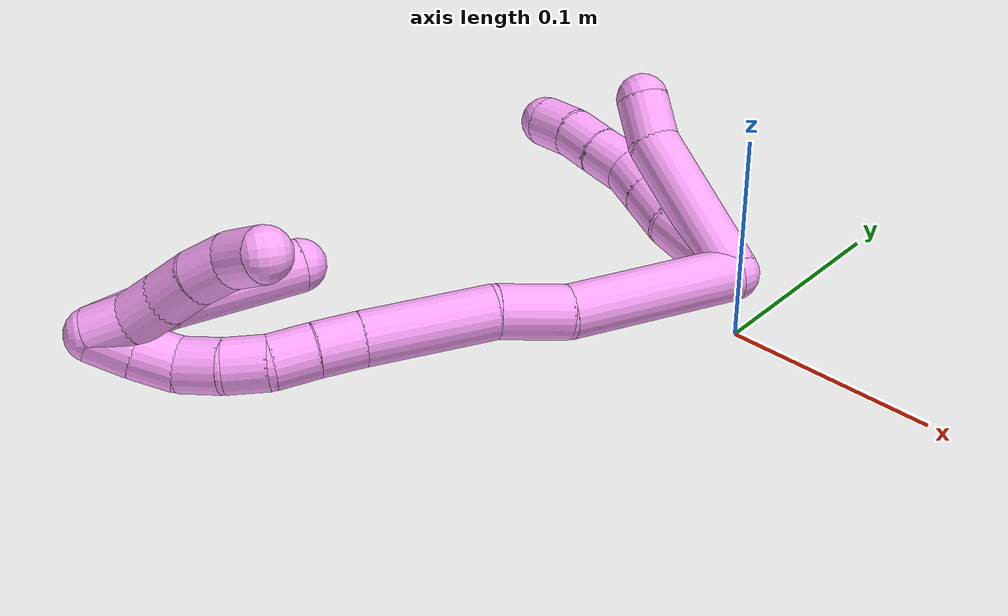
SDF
<sdf version="1.7">
 <world name="default">
  <model name="photoneo_s_sensor">
   <static>1</static>
   <pose>0 0 2 1.57079 1.57079 3.14159</pose>
   <link name="link">
    <inertial><mass>0.1</mass></inertial>
    <sensor name="sensor" type="depth">
     <update_rate>30</update_rate>
     <camera>
      <horizontal_fov>1.22</horizontal_fov>
      <image><width>1920</width><height>1200</height><format>B8G8R8</format></image>
      <clip><near>0.1</near><far>4</far></clip>
      <depth_camera><output>points</output></depth_camera>
     </camera>
     <plugin name="camera_plugin" filename="libgazebo_ros_depth_camera.so">
      <baseline>0.2</baseline>
      <alwaysOn>1</alwaysOn>
      <updateRate>0.0</updateRate>
      <cameraName>camera_ir</cameraName>
      <imageTopicName>/camera/color/image_raw</imageTopicName>
      <cameraInfoTopicName>/camera/color/camera_info</cameraInfoTopicName>
      <depthImageTopicName>/camera/depth/image_raw</depthImageTopicName>
      <depthImageCameraInfoTopicName>/camera/depth/camera_info</depthImageCameraInfoTopicName>
      <pointCloudTopicName>/camera/depth/points</pointCloudTopicName>
      <frameName>fr_optical</frameName>
      <pointCloudCutoff>0.1</pointCloudCutoff>
      <pointCloudCutoffMax>2.0</pointCloudCutoffMax>
      <distortionK1>0</distortionK1>
      <distortionK2>0</distortionK2>
      <distortionK3>0</distortionK3>
      <distortionT1>0</distortionT1>
      <distortionT2>0</distortionT2>
      <CxPrime>0</CxPrime>
      <Cx>0</Cx>
      <Cy>0</Cy>
      <focalLength>0</focalLength>
      <hackBaseline>0</hackBaseline>
     </plugin>
    </sensor>
   </link>
  </model>
  <model name="bin">
   <static>1</static>
   <link name="bottom">
    <collision name="collision-bottom">
     <pose>0 0 -0.01 0 -0 0</pose>
     <geometry><box><size>0.8 0.6 0.02</size></box></geometry>
     <surface>
      <friction><ode><mu>100</mu><mu2>100</mu2></ode></friction>
      <contact><collide_bitmask>65535</collide_bitmask></contact>
     </surface>
    </collision>
   </link>
   <link name="west_wall">
    <collision name="collision-west_wall">
     <pose>-0.41 0 0.1 0 -0 0</pose>
     <geometry><box><size>0.02 0.6 0.2</size></box></geometry>
     <surface>
      <friction><ode><mu>100</mu><mu2>100</mu2></ode></friction>
      <contact><collide_bitmask>65535</collide_bitmask></contact>
     </surface>
    </collision>
   </link>
   <link name="east_wall">
    <collision name="collision-east_wall">
     <pose>0.41 0 0.1 0 -0 0</pose>
     <geometry><box><size>0.02 0.6 0.2</size></box></geometry>
     <surface>
      <friction><ode><mu>100</mu><mu2>100</mu2></ode></friction>
      <contact><collide_bitmask>65535</collide_bitmask></contact>
     </surface>
    </collision>
   </link>
   <link name="south_wall">
    <collision name="collision-south_wall">
     <pose>0 -0.31 0.1 0 -0 0</pose>
     <geometry><box><size>0.8 0.02 0.2</size></box></geometry>
     <surface>
      <friction><ode><mu>100</mu><mu2>100</mu2></ode></friction>
      <contact><collide_bitmask>65535</collide_bitmask></contact>
     </surface>
    </collision>
   </link>
   <link name="north_wall">
    <collision name="collision-north_wall">
     <pose>0 0.31 0.1 0 -0 0</pose>
     <geometry><box><size>0.8 0.02 0.2</size></box></geometry>
     <surface>
      <friction><ode><mu>100</mu><mu2>100</mu2></ode></friction>
      <contact><collide_bitmask>65535</collide_bitmask></contact>
     </surface>
    </collision>
   </link>
  </model>
  <model name="4">
   <static>0</static>
   <link name="4">
    <collision name="collision-cylinder-e_1_2_8">
     <pose>-0.021195 -0.001602 0.007622 0.207157 -1.21866 -0.144845</pose>
     <geometry><cylinder><radius>0.0125</radius><length>0.045162</length></cylinder></geometry>
     <surface>
      <friction><ode><mu>1.16</mu><mu2>1.16</mu2><slip1>0</slip1><slip2>0</slip2></ode></friction>
      <contact><ode><kp>1e+06</kp><kd>1</kd><max_vel>0</max_vel><min_depth>0.001</min_depth></ode></contact>
     </surface>
    </collision>
    <visual name="visual-cylinder-e_1_2_8">
     <pose>-0.021195 -0.001602 0.007622 0.207157 -1.21866 -0.144845</pose>
     <geometry><cylinder><radius>0.0125</radius><length>0.045162</length></cylinder></geometry>
     <material><ambient>1 0.65098 0.996078 1</ambient></material>
    </visual>
    <collision name="collision-cylinder-e_2_8_9">
     <pose>-0.053796 -0.003741 0.017195 0.268714 -1.39514 -0.225623</pose>
     <geometry><cylinder><radius>0.0125</radius><length>0.023169</length></cylinder></geometry>
     <surface>
      <friction><ode><mu>1.16</mu><mu2>1.16</mu2><slip1>0</slip1><slip2>0</slip2></ode></friction>
      <contact><ode><kp>1e+06</kp><kd>1</kd><max_vel>0</max_vel><min_depth>0.001</min_depth></ode></contact>
     </surface>
    </collision>
    <visual name="visual-cylinder-e_2_8_9">
     <pose>-0.053796 -0.003741 0.017195 0.268714 -1.39514 -0.225623</pose>
     <geometry><cylinder><radius>0.0125</radius><length>0.023169</length></cylinder></geometry>
     <material><ambient>1 0.65098 0.996078 1</ambient></material>
    </visual>
    <collision name="collision-cylinder-e_3_9_10">
     <pose>-0.075346 -0.00472 0.020949 0.240357 -1.38985 -0.200668</pose>
     <geometry><cylinder><radius>0.0125</radius><length>0.020624</length></cylinder></geometry>
     <surface>
      <friction><ode><mu>1.16</mu><mu2>1.16</mu2><slip1>0</slip1><slip2>0</slip2></ode></friction>
      <contact><ode><kp>1e+06</kp><kd>1</kd><max_vel>0</max_vel><min_depth>0.001</min_depth></ode></contact>
     </surface>
    </collision>
    <visual name="visual-cylinder-e_3_9_10">
     <pose>-0.075346 -0.00472 0.020949 0.240357 -1.38985 -0.200668</pose>
     <geometry><cylinder><radius>0.0125</radius><length>0.020624</length></cylinder></geometry>
     <material><ambient>1 0.65098 0.996078 1</ambient></material>
    </visual>
    <collision name="collision-cylinder-e_4_10_11">
     <pose>-0.094609 -0.005785 0.027319 0.135614 -1.10277 -0.083484</pose>
     <geometry><cylinder><radius>0.0125</radius><length>0.020435</length></cylinder></geometry>
     <surface>
      <friction><ode><mu>1.16</mu><mu2>1.16</mu2><slip1>0</slip1><slip2>0</slip2></ode></friction>
      <contact><ode><kp>1e+06</kp><kd>1</kd><max_vel>0</max_vel><min_depth>0.001</min_depth></ode></contact>
     </surface>
    </collision>
    <visual name="visual-cylinder-e_4_10_11">
     <pose>-0.094609 -0.005785 0.027319 0.135614 -1.10277 -0.083484</pose>
     <geometry><cylinder><radius>0.0125</radius><length>0.020435</length></cylinder></geometry>
     <material><ambient>1 0.65098 0.996078 1</ambient></material>
    </visual>
    <collision name="collision-cylinder-e_5_11_12">
     <pose>-0.113071 -0.007404 0.035898 0.243206 -1.15426 -0.158795</pose>
     <geometry><cylinder><radius>0.0125</radius><length>0.020434</length></cylinder></geometry>
     <surface>
      <friction><ode><mu>1.16</mu><mu2>1.16</mu2><slip1>0</slip1><slip2>0</slip2></ode></friction>
      <contact><ode><kp>1e+06</kp><kd>1</kd><max_vel>0</max_vel><min_depth>0.001</min_depth></ode></contact>
     </surface>
    </collision>
    <visual name="visual-cylinder-e_5_11_12">
     <pose>-0.113071 -0.007404 0.035898 0.243206 -1.15426 -0.158795</pose>
     <geometry><cylinder><radius>0.0125</radius><length>0.020434</length></cylinder></geometry>
     <material><ambient>1 0.65098 0.996078 1</ambient></material>
    </visual>
    <collision name="collision-cylinder-e_6_12_6">
     <pose>-0.131022 -0.010765 0.044609 0.46636 -1.02227 -0.264845</pose>
     <geometry><cylinder><radius>0.0125</radius><length>0.020177</length></cylinder></geometry>
     <surface>
      <friction><ode><mu>1.16</mu><mu2>1.16</mu2><slip1>0</slip1><slip2>0</slip2></ode></friction>
      <contact><ode><kp>1e+06</kp><kd>1</kd><max_vel>0</max_vel><min_depth>0.001</min_depth></ode></contact>
     </surface>
    </collision>
    <visual name="visual-cylinder-e_6_12_6">
     <pose>-0.131022 -0.010765 0.044609 0.46636 -1.02227 -0.264845</pose>
     <geometry><cylinder><radius>0.0125</radius><length>0.020177</length></cylinder></geometry>
     <material><ambient>1 0.65098 0.996078 1</ambient></material>
    </visual>
    <collision name="collision-cylinder-e_1_2_13">
     <pose>-0.035571 0.011431 0.009116 -0.897583 -1.18081 0.624332</pose>
     <geometry><cylinder><radius>0.0125</radius><length>0.076918</length></cylinder></geometry>
     <surface>
      <friction><ode><mu>1.16</mu><mu2>1.16</mu2><slip1>0</slip1><slip2>0</slip2></ode></friction>
      <contact><ode><kp>1e+06</kp><kd>1</kd><max_vel>0</max_vel><min_depth>0.001</min_depth></ode></contact>
     </surface>
    </collision>
    <visual name="visual-cylinder-e_1_2_13">
     <pose>-0.035571 0.011431 0.009116 -0.897583 -1.18081 0.624332</pose>
     <geometry><cylinder><radius>0.0125</radius><length>0.076918</length></cylinder></geometry>
     <material><ambient>1 0.65098 0.996078 1</ambient></material>
    </visual>
    <collision name="collision-cylinder-e_2_13_5">
     <pose>-0.081109 0.028669 0.018623 -1.50373 -1.04227 0.985308</pose>
     <geometry><cylinder><radius>0.0125</radius><length>0.023082</length></cylinder></geometry>
     <surface>
      <friction><ode><mu>1.16</mu><mu2>1.16</mu2><slip1>0</slip1><slip2>0</slip2></ode></friction>
      <contact><ode><kp>1e+06</kp><kd>1</kd><max_vel>0</max_vel><min_depth>0.001</min_depth></ode></contact>
     </surface>
    </collision>
    <visual name="visual-cylinder-e_2_13_5">
     <pose>-0.081109 0.028669 0.018623 -1.50373 -1.04227 0.985308</pose>
     <geometry><cylinder><radius>0.0125</radius><length>0.023082</length></cylinder></geometry>
     <material><ambient>1 0.65098 0.996078 1</ambient></material>
    </visual>
    <collision name="collision-cylinder-e_1_2_14">
     <pose>0.006183 0.000753 0.041588 -0.018101 0.147566 -0.001338</pose>
     <geometry><cylinder><radius>0.0125</radius><length>0.084103</length></cylinder></geometry>
     <surface>
      <friction><ode><mu>1.16</mu><mu2>1.16</mu2><slip1>0</slip1><slip2>0</slip2></ode></friction>
      <contact><ode><kp>1e+06</kp><kd>1</kd><max_vel>0</max_vel><min_depth>0.001</min_depth></ode></contact>
     </surface>
    </collision>
    <visual name="visual-cylinder-e_1_2_14">
     <pose>0.006183 0.000753 0.041588 -0.018101 0.147566 -0.001338</pose>
     <geometry><cylinder><radius>0.0125</radius><length>0.084103</length></cylinder></geometry>
     <material><ambient>1 0.65098 0.996078 1</ambient></material>
    </visual>
    <collision name="collision-cylinder-e_2_14_15">
     <pose>0.011658 0.003982 0.100081 -0.145457 -0.041376 0.003015</pose>
     <geometry><cylinder><radius>0.0125</radius><length>0.034201</length></cylinder></geometry>
     <surface>
      <friction><ode><mu>1.16</mu><mu2>1.16</mu2><slip1>0</slip1><slip2>0</slip2></ode></friction>
      <contact><ode><kp>1e+06</kp><kd>1</kd><max_vel>0</max_vel><min_depth>0.001</min_depth></ode></contact>
     </surface>
    </collision>
    <visual name="visual-cylinder-e_2_14_15">
     <pose>0.011658 0.003982 0.100081 -0.145457 -0.041376 0.003015</pose>
     <geometry><cylinder><radius>0.0125</radius><length>0.034201</length></cylinder></geometry>
     <material><ambient>1 0.65098 0.996078 1</ambient></material>
    </visual>
    <collision name="collision-cylinder-e_3_15_16">
     <pose>0.01232 0.004735 0.147248 0.056909 0.04512 0.001284</pose>
     <geometry><cylinder><radius>0.0125</radius><length>0.060683</length></cylinder></geometry>
     <surface>
      <friction><ode><mu>1.16</mu><mu2>1.16</mu2><slip1>0</slip1><slip2>0</slip2></ode></friction>
      <contact><ode><kp>1e+06</kp><kd>1</kd><max_vel>0</max_vel><min_depth>0.001</min_depth></ode></contact>
     </surface>
    </collision>
    <visual name="visual-cylinder-e_3_15_16">
     <pose>0.01232 0.004735 0.147248 0.056909 0.04512 0.001284</pose>
     <geometry><cylinder><radius>0.0125</radius><length>0.060683</length></cylinder></geometry>
     <material><ambient>1 0.65098 0.996078 1</ambient></material>
    </visual>
    <collision name="collision-cylinder-e_4_16_17">
     <pose>0.014651 0.002455 0.187892 0.053473 0.092324 0.002471</pose>
     <geometry><cylinder><radius>0.0125</radius><length>0.020884</length></cylinder></geometry>
     <surface>
      <friction><ode><mu>1.16</mu><mu2>1.16</mu2><slip1>0</slip1><slip2>0</slip2></ode></friction>
      <contact><ode><kp>1e+06</kp><kd>1</kd><max_vel>0</max_vel><min_depth>0.001</min_depth></ode></contact>
     </surface>
    </collision>
    <visual name="visual-cylinder-e_4_16_17">
     <pose>0.014651 0.002455 0.187892 0.053473 0.092324 0.002471</pose>
     <geometry><cylinder><radius>0.0125</radius><length>0.020884</length></cylinder></geometry>
     <material><ambient>1 0.65098 0.996078 1</ambient></material>
    </visual>
    <collision name="collision-cylinder-e_5_17_18">
     <pose>0.016495 0.000818 0.208207 0.108403 0.087965 0.004776</pose>
     <geometry><cylinder><radius>0.0125</radius><length>0.020061</length></cylinder></geometry>
     <surface>
      <friction><ode><mu>1.16</mu><mu2>1.16</mu2><slip1>0</slip1><slip2>0</slip2></ode></friction>
      <contact><ode><kp>1e+06</kp><kd>1</kd><max_vel>0</max_vel><min_depth>0.001</min_depth></ode></contact>
     </surface>
    </collision>
    <visual name="visual-cylinder-e_5_17_18">
     <pose>0.016495 0.000818 0.208207 0.108403 0.087965 0.004776</pose>
     <geometry><cylinder><radius>0.0125</radius><length>0.020061</length></cylinder></geometry>
     <material><ambient>1 0.65098 0.996078 1</ambient></material>
    </visual>
    <collision name="collision-cylinder-e_6_18_19">
     <pose>0.015307 -0.001605 0.227857 0.137292 -0.207901 -0.014345</pose>
     <geometry><cylinder><radius>0.0125</radius><length>0.02005</length></cylinder></geometry>
     <surface>
      <friction><ode><mu>1.16</mu><mu2>1.16</mu2><slip1>0</slip1><slip2>0</slip2></ode></friction>
      <contact><ode><kp>1e+06</kp><kd>1</kd><max_vel>0</max_vel><min_depth>0.001</min_depth></ode></contact>
     </surface>
    </collision>
    <visual name="visual-cylinder-e_6_18_19">
     <pose>0.015307 -0.001605 0.227857 0.137292 -0.207901 -0.014345</pose>
     <geometry><cylinder><radius>0.0125</radius><length>0.02005</length></cylinder></geometry>
     <material><ambient>1 0.65098 0.996078 1</ambient></material>
    </visual>
    <collision name="collision-cylinder-e_7_19_20">
     <pose>0.009111 -0.004903 0.246478 0.216148 -0.425008 -0.04681</pose>
     <geometry><cylinder><radius>0.0125</radius><length>0.020014</length></cylinder></geometry>
     <surface>
      <friction><ode><mu>1.16</mu><mu2>1.16</mu2><slip1>0</slip1><slip2>0</slip2></ode></friction>
      <contact><ode><kp>1e+06</kp><kd>1</kd><max_vel>0</max_vel><min_depth>0.001</min_depth></ode></contact>
     </surface>
    </collision>
    <visual name="visual-cylinder-e_7_19_20">
     <pose>0.009111 -0.004903 0.246478 0.216148 -0.425008 -0.04681</pose>
     <geometry><cylinder><radius>0.0125</radius><length>0.020014</length></cylinder></geometry>
     <material><ambient>1 0.65098 0.996078 1</ambient></material>
    </visual>
    <collision name="collision-cylinder-e_8_20_21">
     <pose>0.00054 -0.005403 0.264221 -0.163144 -0.460699 0.03834</pose>
     <geometry><cylinder><radius>0.0125</radius><length>0.02</length></cylinder></geometry>
     <surface>
      <friction><ode><mu>1.16</mu><mu2>1.16</mu2><slip1>0</slip1><slip2>0</slip2></ode></friction>
      <contact><ode><kp>1e+06</kp><kd>1</kd><max_vel>0</max_vel><min_depth>0.001</min_depth></ode></contact>
     </surface>
    </collision>
    <visual name="visual-cylinder-e_8_20_21">
     <pose>0.00054 -0.005403 0.264221 -0.163144 -0.460699 0.03834</pose>
     <geometry><cylinder><radius>0.0125</radius><length>0.02</length></cylinder></geometry>
     <material><ambient>1 0.65098 0.996078 1</ambient></material>
    </visual>
    <collision name="collision-cylinder-e_9_21_1">
     <pose>-0.007977 -0.001174 0.281765 -0.308475 -0.419141 0.066112</pose>
     <geometry><cylinder><radius>0.0125</radius><length>0.020005</length></cylinder></geometry>
     <surface>
      <friction><ode><mu>1.16</mu><mu2>1.16</mu2><slip1>0</slip1><slip2>0</slip2></ode></friction>
      <contact><ode><kp>1e+06</kp><kd>1</kd><max_vel>0</max_vel><min_depth>0.001</min_depth></ode></contact>
     </surface>
    </collision>
    <visual name="visual-cylinder-e_9_21_1">
     <pose>-0.007977 -0.001174 0.281765 -0.308475 -0.419141 0.066112</pose>
     <geometry><cylinder><radius>0.0125</radius><length>0.020005</length></cylinder></geometry>
     <material><ambient>1 0.65098 0.996078 1</ambient></material>
    </visual>
    <collision name="collision-cylinder-e_1_1_22">
     <pose>-0.010415 0.005998 0.281639 -2.67947 0.164036 -0.672297</pose>
     <geometry><cylinder><radius>0.0125</radius><length>0.02</length></cylinder></geometry>
     <surface>
      <friction><ode><mu>1.16</mu><mu2>1.16</mu2><slip1>0</slip1><slip2>0</slip2></ode></friction>
      <contact><ode><kp>1e+06</kp><kd>1</kd><max_vel>0</max_vel><min_depth>0.001</min_depth></ode></contact>
     </surface>
    </collision>
    <visual name="visual-cylinder-e_1_1_22">
     <pose>-0.010415 0.005998 0.281639 -2.67947 0.164036 -0.672297</pose>
     <geometry><cylinder><radius>0.0125</radius><length>0.02</length></cylinder></geometry>
     <material><ambient>1 0.65098 0.996078 1</ambient></material>
    </visual>
    <collision name="collision-cylinder-e_2_22_23">
     <pose>-0.006932 0.017277 0.265792 -2.36601 0.186014 -0.449008</pose>
     <geometry><cylinder><radius>0.0125</radius><length>0.02</length></cylinder></geometry>
     <surface>
      <friction><ode><mu>1.16</mu><mu2>1.16</mu2><slip1>0</slip1><slip2>0</slip2></ode></friction>
      <contact><ode><kp>1e+06</kp><kd>1</kd><max_vel>0</max_vel><min_depth>0.001</min_depth></ode></contact>
     </surface>
    </collision>
    <visual name="visual-cylinder-e_2_22_23">
     <pose>-0.006932 0.017277 0.265792 -2.36601 0.186014 -0.449008</pose>
     <geometry><cylinder><radius>0.0125</radius><length>0.02</length></cylinder></geometry>
     <material><ambient>1 0.65098 0.996078 1</ambient></material>
    </visual>
    <collision name="collision-cylinder-e_3_23_24">
     <pose>-0.002493 0.031429 0.252416 -2.28934 0.261935 -0.564832</pose>
     <geometry><cylinder><radius>0.0125</radius><length>0.02</length></cylinder></geometry>
     <surface>
      <friction><ode><mu>1.16</mu><mu2>1.16</mu2><slip1>0</slip1><slip2>0</slip2></ode></friction>
      <contact><ode><kp>1e+06</kp><kd>1</kd><max_vel>0</max_vel><min_depth>0.001</min_depth></ode></contact>
     </surface>
    </collision>
    <visual name="visual-cylinder-e_3_23_24">
     <pose>-0.002493 0.031429 0.252416 -2.28934 0.261935 -0.564832</pose>
     <geometry><cylinder><radius>0.0125</radius><length>0.02</length></cylinder></geometry>
     <material><ambient>1 0.65098 0.996078 1</ambient></material>
    </visual>
    <collision name="collision-cylinder-e_4_24_25">
     <pose>0.003036 0.045086 0.238946 -2.40989 0.298432 -0.747898</pose>
     <geometry><cylinder><radius>0.0125</radius><length>0.02</length></cylinder></geometry>
     <surface>
      <friction><ode><mu>1.16</mu><mu2>1.16</mu2><slip1>0</slip1><slip2>0</slip2></ode></friction>
      <contact><ode><kp>1e+06</kp><kd>1</kd><max_vel>0</max_vel><min_depth>0.001</min_depth></ode></contact>
     </surface>
    </collision>
    <visual name="visual-cylinder-e_4_24_25">
     <pose>0.003036 0.045086 0.238946 -2.40989 0.298432 -0.747898</pose>
     <geometry><cylinder><radius>0.0125</radius><length>0.02</length></cylinder></geometry>
     <material><ambient>1 0.65098 0.996078 1</ambient></material>
    </visual>
    <collision name="collision-cylinder-e_5_25_4">
     <pose>0.011782 0.057237 0.226084 -2.35493 0.619341 -1.31372</pose>
     <geometry><cylinder><radius>0.0125</radius><length>0.02</length></cylinder></geometry>
     <surface>
      <friction><ode><mu>1.16</mu><mu2>1.16</mu2><slip1>0</slip1><slip2>0</slip2></ode></friction>
      <contact><ode><kp>1e+06</kp><kd>1</kd><max_vel>0</max_vel><min_depth>0.001</min_depth></ode></contact>
     </surface>
    </collision>
    <visual name="visual-cylinder-e_5_25_4">
     <pose>0.011782 0.057237 0.226084 -2.35493 0.619341 -1.31372</pose>
     <geometry><cylinder><radius>0.0125</radius><length>0.02</length></cylinder></geometry>
     <material><ambient>1 0.65098 0.996078 1</ambient></material>
    </visual>
    <collision name="collision-cylinder-e_1_1_26">
     <pose>-0.019757 0.000913 0.273268 3.10171 -0.420992 -2.95543</pose>
     <geometry><cylinder><radius>0.0125</radius><length>0.037727</length></cylinder></geometry>
     <surface>
      <friction><ode><mu>1.16</mu><mu2>1.16</mu2><slip1>0</slip1><slip2>0</slip2></ode></friction>
      <contact><ode><kp>1e+06</kp><kd>1</kd><max_vel>0</max_vel><min_depth>0.001</min_depth></ode></contact>
     </surface>
    </collision>
    <visual name="visual-cylinder-e_1_1_26">
     <pose>-0.019757 0.000913 0.273268 3.10171 -0.420992 -2.95543</pose>
     <geometry><cylinder><radius>0.0125</radius><length>0.037727</length></cylinder></geometry>
     <material><ambient>1 0.65098 0.996078 1</ambient></material>
    </visual>
    <collision name="collision-cylinder-e_2_26_3">
     <pose>-0.033661 0.000633 0.225554 -3.12828 -0.200308 3.00928</pose>
     <geometry><cylinder><radius>0.0125</radius><length>0.062273</length></cylinder></geometry>
     <surface>
      <friction><ode><mu>1.16</mu><mu2>1.16</mu2><slip1>0</slip1><slip2>0</slip2></ode></friction>
      <contact><ode><kp>1e+06</kp><kd>1</kd><max_vel>0</max_vel><min_depth>0.001</min_depth></ode></contact>
     </surface>
    </collision>
    <visual name="visual-cylinder-e_2_26_3">
     <pose>-0.033661 0.000633 0.225554 -3.12828 -0.200308 3.00928</pose>
     <geometry><cylinder><radius>0.0125</radius><length>0.062273</length></cylinder></geometry>
     <material><ambient>1 0.65098 0.996078 1</ambient></material>
    </visual>
    <collision name="collision-sphere-3">
     <pose>-0.039856 0.001039 0.195042 0 -0 0</pose>
     <geometry><sphere><radius>0.0125</radius></sphere></geometry>
     <surface>
      <friction><ode><mu>1.16</mu><mu2>1.16</mu2><slip1>0</slip1><slip2>0</slip2></ode></friction>
      <contact><ode><kp>1e+06</kp><kd>1</kd><max_vel>0</max_vel><min_depth>0.001</min_depth></ode></contact>
     </surface>
    </collision>
    <visual name="visual-sphere-3">
     <pose>-0.039856 0.001039 0.195042 0 -0 0</pose>
     <geometry><sphere><radius>0.0125</radius></sphere></geometry>
     <material><ambient>1 0.65098 0.996078 1</ambient></material>
    </visual>
    <collision name="collision-sphere-26">
     <pose>-0.027465 0.000227 0.256065 0 -0 0</pose>
     <geometry><sphere><radius>0.0125</radius></sphere></geometry>
     <surface>
      <friction><ode><mu>1.16</mu><mu2>1.16</mu2><slip1>0</slip1><slip2>0</slip2></ode></friction>
      <contact><ode><kp>1e+06</kp><kd>1</kd><max_vel>0</max_vel><min_depth>0.001</min_depth></ode></contact>
     </surface>
    </collision>
    <visual name="visual-sphere-26">
     <pose>-0.027465 0.000227 0.256065 0 -0 0</pose>
     <geometry><sphere><radius>0.0125</radius></sphere></geometry>
     <material><ambient>1 0.65098 0.996078 1</ambient></material>
    </visual>
    <collision name="collision-sphere-4">
     <pose>0.017587 0.063002 0.220334 0 -0 0</pose>
     <geometry><sphere><radius>0.0125</radius></sphere></geometry>
     <surface>
      <friction><ode><mu>1.16</mu><mu2>1.16</mu2><slip1>0</slip1><slip2>0</slip2></ode></friction>
      <contact><ode><kp>1e+06</kp><kd>1</kd><max_vel>0</max_vel><min_depth>0.001</min_depth></ode></contact>
     </surface>
    </collision>
    <visual name="visual-sphere-4">
     <pose>0.017587 0.063002 0.220334 0 -0 0</pose>
     <geometry><sphere><radius>0.0125</radius></sphere></geometry>
     <material><ambient>1 0.65098 0.996078 1</ambient></material>
    </visual>
    <collision name="collision-sphere-25">
     <pose>0.005977 0.051472 0.231835 0 -0 0</pose>
     <geometry><sphere><radius>0.0125</radius></sphere></geometry>
     <surface>
      <friction><ode><mu>1.16</mu><mu2>1.16</mu2><slip1>0</slip1><slip2>0</slip2></ode></friction>
      <contact><ode><kp>1e+06</kp><kd>1</kd><max_vel>0</max_vel><min_depth>0.001</min_depth></ode></contact>
     </surface>
    </collision>
    <visual name="visual-sphere-25">
     <pose>0.005977 0.051472 0.231835 0 -0 0</pose>
     <geometry><sphere><radius>0.0125</radius></sphere></geometry>
     <material><ambient>1 0.65098 0.996078 1</ambient></material>
    </visual>
    <collision name="collision-sphere-24">
     <pose>9.6e-05 0.0387 0.246058 0 -0 0</pose>
     <geometry><sphere><radius>0.0125</radius></sphere></geometry>
     <surface>
      <friction><ode><mu>1.16</mu><mu2>1.16</mu2><slip1>0</slip1><slip2>0</slip2></ode></friction>
      <contact><ode><kp>1e+06</kp><kd>1</kd><max_vel>0</max_vel><min_depth>0.001</min_depth></ode></contact>
     </surface>
    </collision>
    <visual name="visual-sphere-24">
     <pose>9.6e-05 0.0387 0.246058 0 -0 0</pose>
     <geometry><sphere><radius>0.0125</radius></sphere></geometry>
     <material><ambient>1 0.65098 0.996078 1</ambient></material>
    </visual>
    <collision name="collision-sphere-23">
     <pose>-0.005083 0.024158 0.258775 0 -0 0</pose>
     <geometry><sphere><radius>0.0125</radius></sphere></geometry>
     <surface>
      <friction><ode><mu>1.16</mu><mu2>1.16</mu2><slip1>0</slip1><slip2>0</slip2></ode></friction>
      <contact><ode><kp>1e+06</kp><kd>1</kd><max_vel>0</max_vel><min_depth>0.001</min_depth></ode></contact>
     </surface>
    </collision>
    <visual name="visual-sphere-23">
     <pose>-0.005083 0.024158 0.258775 0 -0 0</pose>
     <geometry><sphere><radius>0.0125</radius></sphere></geometry>
     <material><ambient>1 0.65098 0.996078 1</ambient></material>
    </visual>
    <collision name="collision-sphere-22">
     <pose>-0.008782 0.010397 0.272809 0 -0 0</pose>
     <geometry><sphere><radius>0.0125</radius></sphere></geometry>
     <surface>
      <friction><ode><mu>1.16</mu><mu2>1.16</mu2><slip1>0</slip1><slip2>0</slip2></ode></friction>
      <contact><ode><kp>1e+06</kp><kd>1</kd><max_vel>0</max_vel><min_depth>0.001</min_depth></ode></contact>
     </surface>
    </collision>
    <visual name="visual-sphere-22">
     <pose>-0.008782 0.010397 0.272809 0 -0 0</pose>
     <geometry><sphere><radius>0.0125</radius></sphere></geometry>
     <material><ambient>1 0.65098 0.996078 1</ambient></material>
    </visual>
    <collision name="collision-sphere-1">
     <pose>-0.012048 0.0016 0.29047 0 -0 0</pose>
     <geometry><sphere><radius>0.0125</radius></sphere></geometry>
     <surface>
      <friction><ode><mu>1.16</mu><mu2>1.16</mu2><slip1>0</slip1><slip2>0</slip2></ode></friction>
      <contact><ode><kp>1e+06</kp><kd>1</kd><max_vel>0</max_vel><min_depth>0.001</min_depth></ode></contact>
     </surface>
    </collision>
    <visual name="visual-sphere-1">
     <pose>-0.012048 0.0016 0.29047 0 -0 0</pose>
     <geometry><sphere><radius>0.0125</radius></sphere></geometry>
     <material><ambient>1 0.65098 0.996078 1</ambient></material>
    </visual>
    <collision name="collision-sphere-21">
     <pose>-0.003906 -0.003948 0.27306 0 -0 0</pose>
     <geometry><sphere><radius>0.0125</radius></sphere></geometry>
     <surface>
      <friction><ode><mu>1.16</mu><mu2>1.16</mu2><slip1>0</slip1><slip2>0</slip2></ode></friction>
      <contact><ode><kp>1e+06</kp><kd>1</kd><max_vel>0</max_vel><min_depth>0.001</min_depth></ode></contact>
     </surface>
    </collision>
    <visual name="visual-sphere-21">
     <pose>-0.003906 -0.003948 0.27306 0 -0 0</pose>
     <geometry><sphere><radius>0.0125</radius></sphere></geometry>
     <material><ambient>1 0.65098 0.996078 1</ambient></material>
    </visual>
    <collision name="collision-sphere-12">
     <pose>-0.122414 -0.0084 0.03991 0 -0 0</pose>
     <geometry><sphere><radius>0.0125</radius></sphere></geometry>
     <surface>
      <friction><ode><mu>1.16</mu><mu2>1.16</mu2><slip1>0</slip1><slip2>0</slip2></ode></friction>
      <contact><ode><kp>1e+06</kp><kd>1</kd><max_vel>0</max_vel><min_depth>0.001</min_depth></ode></contact>
     </surface>
    </collision>
    <visual name="visual-sphere-12">
     <pose>-0.122414 -0.0084 0.03991 0 -0 0</pose>
     <geometry><sphere><radius>0.0125</radius></sphere></geometry>
     <material><ambient>1 0.65098 0.996078 1</ambient></material>
    </visual>
    <collision name="collision-sphere-11">
     <pose>-0.103727 -0.006409 0.031886 0 -0 0</pose>
     <geometry><sphere><radius>0.0125</radius></sphere></geometry>
     <surface>
      <friction><ode><mu>1.16</mu><mu2>1.16</mu2><slip1>0</slip1><slip2>0</slip2></ode></friction>
      <contact><ode><kp>1e+06</kp><kd>1</kd><max_vel>0</max_vel><min_depth>0.001</min_depth></ode></contact>
     </surface>
    </collision>
    <visual name="visual-sphere-11">
     <pose>-0.103727 -0.006409 0.031886 0 -0 0</pose>
     <geometry><sphere><radius>0.0125</radius></sphere></geometry>
     <material><ambient>1 0.65098 0.996078 1</ambient></material>
    </visual>
    <collision name="collision-sphere-10">
     <pose>-0.08549 -0.005162 0.022752 0 -0 0</pose>
     <geometry><sphere><radius>0.0125</radius></sphere></geometry>
     <surface>
      <friction><ode><mu>1.16</mu><mu2>1.16</mu2><slip1>0</slip1><slip2>0</slip2></ode></friction>
      <contact><ode><kp>1e+06</kp><kd>1</kd><max_vel>0</max_vel><min_depth>0.001</min_depth></ode></contact>
     </surface>
    </collision>
    <visual name="visual-sphere-10">
     <pose>-0.08549 -0.005162 0.022752 0 -0 0</pose>
     <geometry><sphere><radius>0.0125</radius></sphere></geometry>
     <material><ambient>1 0.65098 0.996078 1</ambient></material>
    </visual>
    <collision name="collision-sphere-9">
     <pose>-0.065202 -0.004279 0.019147 0 -0 0</pose>
     <geometry><sphere><radius>0.0125</radius></sphere></geometry>
     <surface>
      <friction><ode><mu>1.16</mu><mu2>1.16</mu2><slip1>0</slip1><slip2>0</slip2></ode></friction>
      <contact><ode><kp>1e+06</kp><kd>1</kd><max_vel>0</max_vel><min_depth>0.001</min_depth></ode></contact>
     </surface>
    </collision>
    <visual name="visual-sphere-9">
     <pose>-0.065202 -0.004279 0.019147 0 -0 0</pose>
     <geometry><sphere><radius>0.0125</radius></sphere></geometry>
     <material><ambient>1 0.65098 0.996078 1</ambient></material>
    </visual>
    <collision name="collision-sphere-2">
     <geometry><sphere><radius>0.0125</radius></sphere></geometry>
     <surface>
      <friction><ode><mu>1.16</mu><mu2>1.16</mu2><slip1>0</slip1><slip2>0</slip2></ode></friction>
      <contact><ode><kp>1e+06</kp><kd>1</kd><max_vel>0</max_vel><min_depth>0.001</min_depth></ode></contact>
     </surface>
    </collision>
    <visual name="visual-sphere-2">
     <geometry><sphere><radius>0.0125</radius></sphere></geometry>
     <material><ambient>1 0.65098 0.996078 1</ambient></material>
    </visual>
    <collision name="collision-sphere-19">
     <pose>0.013238 -0.002948 0.237574 0 -0 0</pose>
     <geometry><sphere><radius>0.0125</radius></sphere></geometry>
     <surface>
      <friction><ode><mu>1.16</mu><mu2>1.16</mu2><slip1>0</slip1><slip2>0</slip2></ode></friction>
      <contact><ode><kp>1e+06</kp><kd>1</kd><max_vel>0</max_vel><min_depth>0.001</min_depth></ode></contact>
     </surface>
    </collision>
    <visual name="visual-sphere-19">
     <pose>0.013238 -0.002948 0.237574 0 -0 0</pose>
     <geometry><sphere><radius>0.0125</radius></sphere></geometry>
     <material><ambient>1 0.65098 0.996078 1</ambient></material>
    </visual>
    <collision name="collision-sphere-8">
     <pose>-0.04239 -0.003204 0.015243 0 -0 0</pose>
     <geometry><sphere><radius>0.0125</radius></sphere></geometry>
     <surface>
      <friction><ode><mu>1.16</mu><mu2>1.16</mu2><slip1>0</slip1><slip2>0</slip2></ode></friction>
      <contact><ode><kp>1e+06</kp><kd>1</kd><max_vel>0</max_vel><min_depth>0.001</min_depth></ode></contact>
     </surface>
    </collision>
    <visual name="visual-sphere-8">
     <pose>-0.04239 -0.003204 0.015243 0 -0 0</pose>
     <geometry><sphere><radius>0.0125</radius></sphere></geometry>
     <material><ambient>1 0.65098 0.996078 1</ambient></material>
    </visual>
    <collision name="collision-sphere-6">
     <pose>-0.139631 -0.01313 0.049307 0 -0 0</pose>
     <geometry><sphere><radius>0.0125</radius></sphere></geometry>
     <surface>
      <friction><ode><mu>1.16</mu><mu2>1.16</mu2><slip1>0</slip1><slip2>0</slip2></ode></friction>
      <contact><ode><kp>1e+06</kp><kd>1</kd><max_vel>0</max_vel><min_depth>0.001</min_depth></ode></contact>
     </surface>
    </collision>
    <visual name="visual-sphere-6">
     <pose>-0.139631 -0.01313 0.049307 0 -0 0</pose>
     <geometry><sphere><radius>0.0125</radius></sphere></geometry>
     <material><ambient>1 0.65098 0.996078 1</ambient></material>
    </visual>
    <collision name="collision-sphere-13">
     <pose>-0.071143 0.022862 0.018233 0 -0 0</pose>
     <geometry><sphere><radius>0.0125</radius></sphere></geometry>
     <surface>
      <friction><ode><mu>1.16</mu><mu2>1.16</mu2><slip1>0</slip1><slip2>0</slip2></ode></friction>
      <contact><ode><kp>1e+06</kp><kd>1</kd><max_vel>0</max_vel><min_depth>0.001</min_depth></ode></contact>
     </surface>
    </collision>
    <visual name="visual-sphere-13">
     <pose>-0.071143 0.022862 0.018233 0 -0 0</pose>
     <geometry><sphere><radius>0.0125</radius></sphere></geometry>
     <material><ambient>1 0.65098 0.996078 1</ambient></material>
    </visual>
    <collision name="collision-sphere-5">
     <pose>-0.091075 0.034476 0.019013 0 -0 0</pose>
     <geometry><sphere><radius>0.0125</radius></sphere></geometry>
     <surface>
      <friction><ode><mu>1.16</mu><mu2>1.16</mu2><slip1>0</slip1><slip2>0</slip2></ode></friction>
      <contact><ode><kp>1e+06</kp><kd>1</kd><max_vel>0</max_vel><min_depth>0.001</min_depth></ode></contact>
     </surface>
    </collision>
    <visual name="visual-sphere-5">
     <pose>-0.091075 0.034476 0.019013 0 -0 0</pose>
     <geometry><sphere><radius>0.0125</radius></sphere></geometry>
     <material><ambient>1 0.65098 0.996078 1</ambient></material>
    </visual>
    <collision name="collision-sphere-14">
     <pose>0.012366 0.001506 0.083176 0 -0 0</pose>
     <geometry><sphere><radius>0.0125</radius></sphere></geometry>
     <surface>
      <friction><ode><mu>1.16</mu><mu2>1.16</mu2><slip1>0</slip1><slip2>0</slip2></ode></friction>
      <contact><ode><kp>1e+06</kp><kd>1</kd><max_vel>0</max_vel><min_depth>0.001</min_depth></ode></contact>
     </surface>
    </collision>
    <visual name="visual-sphere-14">
     <pose>0.012366 0.001506 0.083176 0 -0 0</pose>
     <geometry><sphere><radius>0.0125</radius></sphere></geometry>
     <material><ambient>1 0.65098 0.996078 1</ambient></material>
    </visual>
    <collision name="collision-sphere-15">
     <pose>0.010951 0.006459 0.116987 0 -0 0</pose>
     <geometry><sphere><radius>0.0125</radius></sphere></geometry>
     <surface>
      <friction><ode><mu>1.16</mu><mu2>1.16</mu2><slip1>0</slip1><slip2>0</slip2></ode></friction>
      <contact><ode><kp>1e+06</kp><kd>1</kd><max_vel>0</max_vel><min_depth>0.001</min_depth></ode></contact>
     </surface>
    </collision>
    <visual name="visual-sphere-15">
     <pose>0.010951 0.006459 0.116987 0 -0 0</pose>
     <geometry><sphere><radius>0.0125</radius></sphere></geometry>
     <material><ambient>1 0.65098 0.996078 1</ambient></material>
    </visual>
    <collision name="collision-sphere-16">
     <pose>0.013688 0.003011 0.177509 0 -0 0</pose>
     <geometry><sphere><radius>0.0125</radius></sphere></geometry>
     <surface>
      <friction><ode><mu>1.16</mu><mu2>1.16</mu2><slip1>0</slip1><slip2>0</slip2></ode></friction>
      <contact><ode><kp>1e+06</kp><kd>1</kd><max_vel>0</max_vel><min_depth>0.001</min_depth></ode></contact>
     </surface>
    </collision>
    <visual name="visual-sphere-16">
     <pose>0.013688 0.003011 0.177509 0 -0 0</pose>
     <geometry><sphere><radius>0.0125</radius></sphere></geometry>
     <material><ambient>1 0.65098 0.996078 1</ambient></material>
    </visual>
    <collision name="collision-sphere-17">
     <pose>0.015614 0.001899 0.198274 0 -0 0</pose>
     <geometry><sphere><radius>0.0125</radius></sphere></geometry>
     <surface>
      <friction><ode><mu>1.16</mu><mu2>1.16</mu2><slip1>0</slip1><slip2>0</slip2></ode></friction>
      <contact><ode><kp>1e+06</kp><kd>1</kd><max_vel>0</max_vel><min_depth>0.001</min_depth></ode></contact>
     </surface>
    </collision>
    <visual name="visual-sphere-17">
     <pose>0.015614 0.001899 0.198274 0 -0 0</pose>
     <geometry><sphere><radius>0.0125</radius></sphere></geometry>
     <material><ambient>1 0.65098 0.996078 1</ambient></material>
    </visual>
    <collision name="collision-sphere-18">
     <pose>0.017376 -0.000263 0.21814 0 -0 0</pose>
     <geometry><sphere><radius>0.0125</radius></sphere></geometry>
     <surface>
      <friction><ode><mu>1.16</mu><mu2>1.16</mu2><slip1>0</slip1><slip2>0</slip2></ode></friction>
      <contact><ode><kp>1e+06</kp><kd>1</kd><max_vel>0</max_vel><min_depth>0.001</min_depth></ode></contact>
     </surface>
    </collision>
    <visual name="visual-sphere-18">
     <pose>0.017376 -0.000263 0.21814 0 -0 0</pose>
     <geometry><sphere><radius>0.0125</radius></sphere></geometry>
     <material><ambient>1 0.65098 0.996078 1</ambient></material>
    </visual>
    <collision name="collision-sphere-20">
     <pose>0.004985 -0.006858 0.255382 0 -0 0</pose>
     <geometry><sphere><radius>0.0125</radius></sphere></geometry>
     <surface>
      <friction><ode><mu>1.16</mu><mu2>1.16</mu2><slip1>0</slip1><slip2>0</slip2></ode></friction>
      <contact><ode><kp>1e+06</kp><kd>1</kd><max_vel>0</max_vel><min_depth>0.001</min_depth></ode></contact>
     </surface>
    </collision>
    <visual name="visual-sphere-20">
     <pose>0.004985 -0.006858 0.255382 0 -0 0</pose>
     <geometry><sphere><radius>0.0125</radius></sphere></geometry>
     <material><ambient>1 0.65098 0.996078 1</ambient></material>
    </visual>
    <inertial>
     <pose>-0.020735 0.00574 0.131373 0 -0 0</pose>
     <mass>0.75</mass>
     <inertia><ixx>7.1e-05</ixx><ixy>0</ixy><ixz>0</ixz><iyy>0.000182</iyy><iyz>0</iyz><izz>5.2e-05</izz></inertia>
    </inertial>
   </link>
   <pose>-0.020214 0.02451 0.011478 1.5399 0.163975 -0.585009</pose>
  </model>
 </world>
</sdf>
